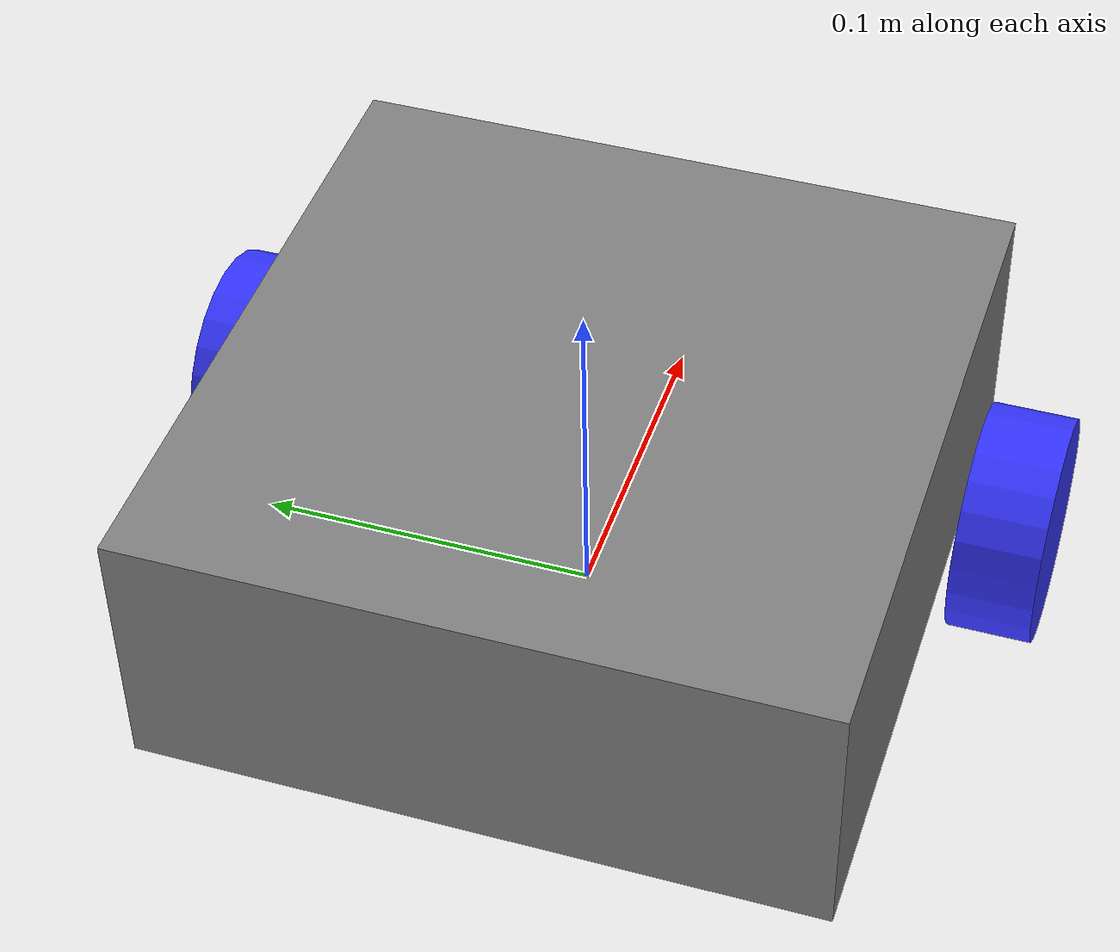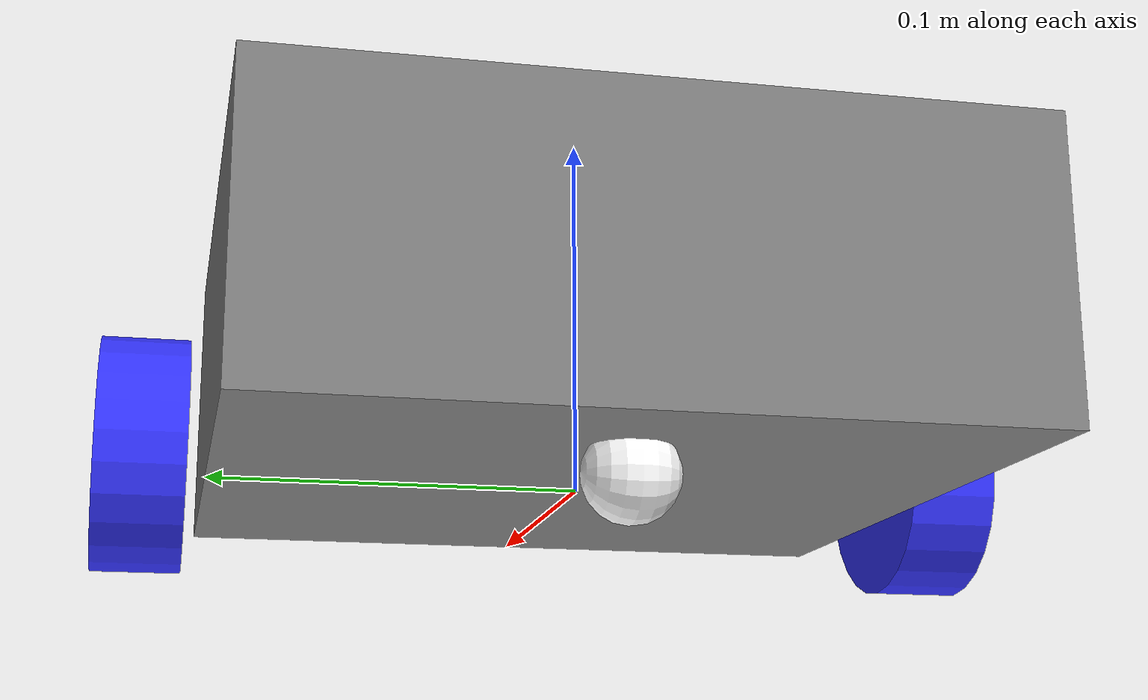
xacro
<?xml version="1.0"?>
<robot xmlns:xacro="http://www.ros.org/wiki/xacro">

    <xacro:include filename="link_macros.xacro"/>
    <xacro:include filename="inertial_macros.xacro"/>
    <xacro:include filename="materials.xacro" />
    <xacro:include filename="gazebo_tags.xacro" />

    <xacro:property name="chassis_length" value="0.2"/>
    <xacro:property name="chassis_width" value="0.2"/>
    <xacro:property name="chassis_height" value="0.08"/>
    <xacro:property name="chassis_mass" value="1.0"/>
    <xacro:property name="wheel_radius" value="0.0335"/>  <!-- was 0.0325 before new frame -->
    <xacro:property name="wheel_thickness" value="0.025"/>
    <xacro:property name="wheel_mass" value="0.05"/>
    <xacro:property name="wheel_offset_x" value="0.045"/>
    <xacro:property name="wheel_offset_y" value="0.117"/>
    <xacro:property name="wheel_offset_z" value="0.01425"/>
    <xacro:property name="caster_wheel_radius" value="0.0125"/> <!-- 0.0205 if offset_z = 0-->
    <xacro:property name="caster_wheel_mass" value="0.01"/>
    <xacro:property name="caster_wheel_offset_x" value="0.06"/>
    <xacro:property name="caster_wheel_offset_z" value="${wheel_offset_z - wheel_radius + caster_wheel_radius}"/>

    <!-- BASE LINK -->

    <link name="base_link">
    </link>

    <!-- BASE_FOOTPRINT LINK -->
    <!-- use for slam -->

    <joint name="base_footprint_joint" type="fixed">
        <parent link="base_link"/>
        <child link="base_footprint"/>
        <origin xyz="0 0 0" rpy="0 0 0"/>
    </joint>

    <link name="base_footprint">
    </link>

    <!-- CHASSIS -->

    <joint name="chassis_joint" type="fixed">
        <parent link="base_link"/>
        <child link="chassis"/>
        <origin xyz="0 0 0" rpy="0 0 0"/>
    </joint>

    <link name="chassis">
        <visual>
            <origin xyz="0 0 ${chassis_height/2}"/>
            <geometry>
                <box size="${chassis_length} ${chassis_width} ${chassis_height}"/>
            </geometry>
            <material name="light_grey"/>
        </visual>
        <collision>
            <origin xyz="0 0 ${chassis_height/2}"/>
            <geometry>
                <box size="${chassis_length} ${chassis_width} ${chassis_height}"/>
            </geometry>
        </collision>
        <xacro:inertial_box mass="${chassis_mass}" x="${chassis_length}" y="${chassis_width}" z="${chassis_height}">
            <origin xyz="0 0 ${chassis_height/2}" rpy="0 0 0"/>
        </xacro:inertial_box>
    </link>

    <!-- LEFT WHEEL -->

    <joint name="left_wheel_joint" type="continuous">
        <parent link="base_link"/>
        <child link="left_wheel"/>
        <origin xyz="${wheel_offset_x} ${wheel_offset_y} ${wheel_offset_z}" rpy="-${pi/2} 0 0" />
        <axis xyz="0 0 1"/>
        <limit effort="10000" velocity="1000"/>
        <joint_properties damping="1.0" friction="1.0"/>
    </joint>

    <xacro:wheel_link wheel_name="left_wheel" />

    <!-- RIGHT WHEEL -->

    <joint name="right_wheel_joint" type="continuous">
        <parent link="base_link"/>
        <child link="right_wheel"/>
        <origin xyz="${wheel_offset_x} ${-wheel_offset_y} ${wheel_offset_z}" rpy="${pi/2} 0 0" />
        <axis xyz="0 0 -1"/>
        <limit effort="10000" velocity="1000"/>
        <joint_properties damping="1.0" friction="1.0"/>
    </joint>

    <xacro:wheel_link wheel_name="right_wheel" />

    <!-- Caster Wheel Front -->

    <joint name="front_yaw_joint" type="continuous">
        <origin rpy="0 0 0" xyz="${-caster_wheel_offset_x} 0 ${caster_wheel_offset_z}" />
        <parent link="chassis" />
        <child link="front_yaw_link" />
        <axis xyz="0 0 1" />
        <limit effort="1000.0" velocity="100.0" />
        <dynamics damping="0.0" friction="0.1"/>
    </joint>

    <link name="front_yaw_link">
      <visual>
        <origin rpy="0 1.5707 1.5707" xyz="0 0 0"/>
        <geometry>
          <sphere radius="${caster_wheel_radius}"/>
        </geometry>
        <material name="white"/>
      </visual>

      <collision>
        <origin rpy="0 1.5707 1.5707" xyz="0 0 0"/>
        <geometry>
          <sphere radius="${caster_wheel_radius}"/>
        </geometry>
      </collision>

      <inertial>
          <origin rpy="0 1.5707 1.5707" xyz="0 0 0"/>
          <mass value="0.001"/>
          <inertia ixx="5.145833333333334e-09" ixy="0" ixz="0" iyy="5.145833333333334e-09" iyz="0" izz="1.0125000000000003e-08"/>
      </inertial>

  </link>

  <joint name="front_roll_joint" type="continuous">
    <origin rpy="0 0 0" xyz="0 0 0" />
    <parent link="front_yaw_link" />
    <child link="front_roll_link" />
    <axis xyz="1 0 0" />
    <limit effort="1000.0" velocity="100.0" />
    <dynamics damping="0.0" friction="0.1"/>
  </joint>

  <link name="front_roll_link">
      <visual>
        <origin rpy="0 1.5707 1.5707" xyz="0 0 0"/>
        <geometry>
          <sphere radius="${caster_wheel_radius}"/>
        </geometry>
        <material name="white"/>
      </visual>

      <collision>
        <origin rpy="0 1.5707 1.5707" xyz="0 0 0"/>
        <geometry>
          <sphere radius="${caster_wheel_radius}"/>
        </geometry>
      </collision>

      <inertial>
          <origin rpy="0 1.5707 1.5707" xyz="0 0 0"/>
          <mass value="0.001"/>
          <inertia ixx="5.145833333333334e-09" ixy="0" ixz="0" iyy="5.145833333333334e-09" iyz="0" izz="1.0125000000000003e-08"/>
      </inertial>
  </link>

  <joint name="front_pitch_joint" type="continuous">
    <origin rpy="0 0 0" xyz="0 0 0" />
    <parent link="front_roll_link" />
    <child link="front_pitch_link" />
    <axis xyz="0 1 0" />
    <limit effort="1000.0" velocity="100.0" />
    <dynamics damping="0.0" friction="0.1"/>
  </joint>

  <link name="front_pitch_link">
    <visual>
      <origin rpy="0 1.5707 1.5707" xyz="0 0 0"/>
      <geometry>
        <sphere radius="${caster_wheel_radius}"/>
      </geometry>
      <material name="white"/>
    </visual>

    <collision>
      <origin rpy="0 1.5707 1.5707" xyz="0 0 0"/>
      <geometry>
        <sphere radius="${caster_wheel_radius}"/>
      </geometry>
    </collision>

    <inertial>
        <origin rpy="0 1.5707 1.5707" xyz="0 0 0"/>
        <mass value="0.001"/>
        <inertia ixx="4e-08" ixy="0" ixz="0" iyy="4e-08" iyz="0" izz="4e-08"/>
    </inertial>
  </link>

</robot>

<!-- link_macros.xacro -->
<robot xmlns:xacro="http://www.ros.org/wiki/xacro" >

    <!-- Specify some standard inertial calculations https://en.wikipedia.org/wiki/List_of_moments_of_inertia -->
    <!-- These make use of xacro's mathematical functionality -->

    <xacro:macro name="wheel_link" params="wheel_name">
        <link name="${wheel_name}">
        <visual>
            <geometry>
                <cylinder radius="${wheel_radius}" length="${wheel_thickness}"/>
            </geometry>
            <material name="blue"/>
        </visual>
        <collision>
            <geometry>
                <cylinder radius="${wheel_radius}" length="${wheel_thickness}"/>
            </geometry>
        </collision>
        <xacro:inertial_cylinder mass="${wheel_mass}" radius="${wheel_radius}" length="${wheel_thickness}" >
            <origin xyz="0 0 0" rpy="0 0 0"/>
        </xacro:inertial_cylinder>
    </link>
    </xacro:macro>

</robot>

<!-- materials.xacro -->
<robot xmlns:xacro="http://www.ros.org/wiki/xacro" >

    <material name="white">
        <color rgba="1 1 1 1" />
    </material>

    <material name="light_grey">
        <color rgba="0.5 0.5 0.5 1" />
    </material>

    <material name="red">
        <color rgba="1.0 0 0 1"/>
    </material>

    <material name="orange">
        <color rgba="1 0.3 0.1 1"/>
    </material>

    <material name="Yellow">
        <color rgba="0.9 1.0 0.1 1"/>
    </material>

    <material name="green">
        <color rgba="0.0 1.0 0 1"/>
    </material>

    <material name="blue">
        <color rgba="0.2 0.2 1 1"/>
    </material>

    <material name="black">
        <color rgba="0 0 0 1"/>
    </material>

</robot>
